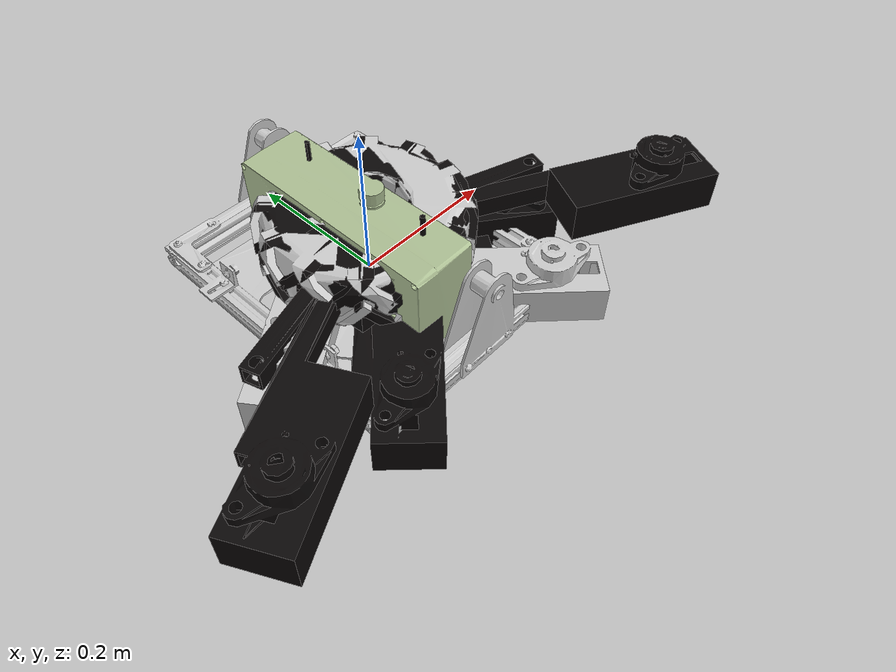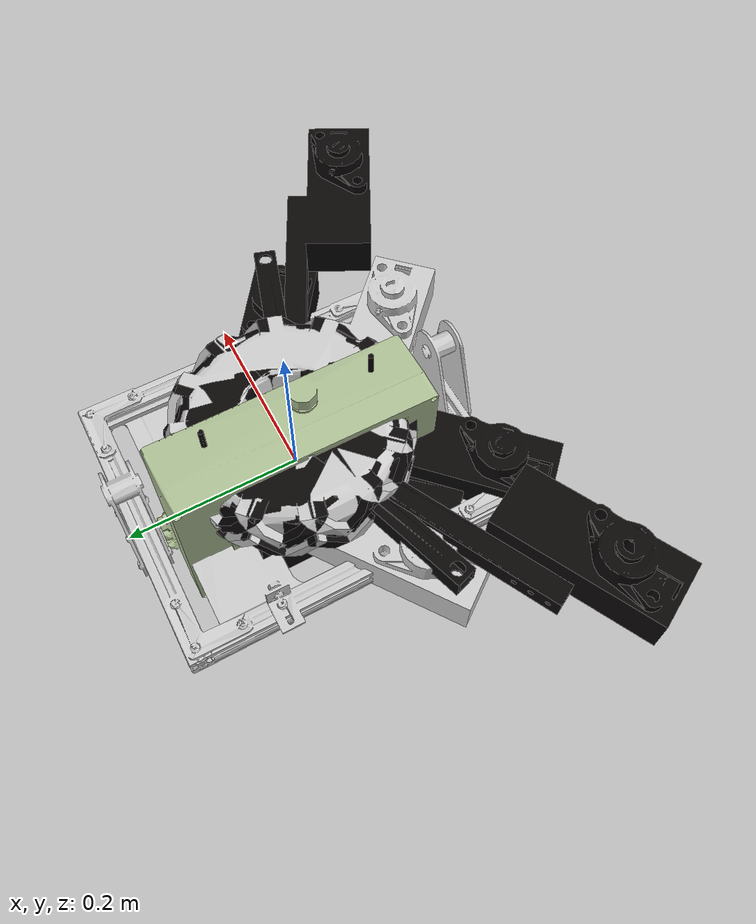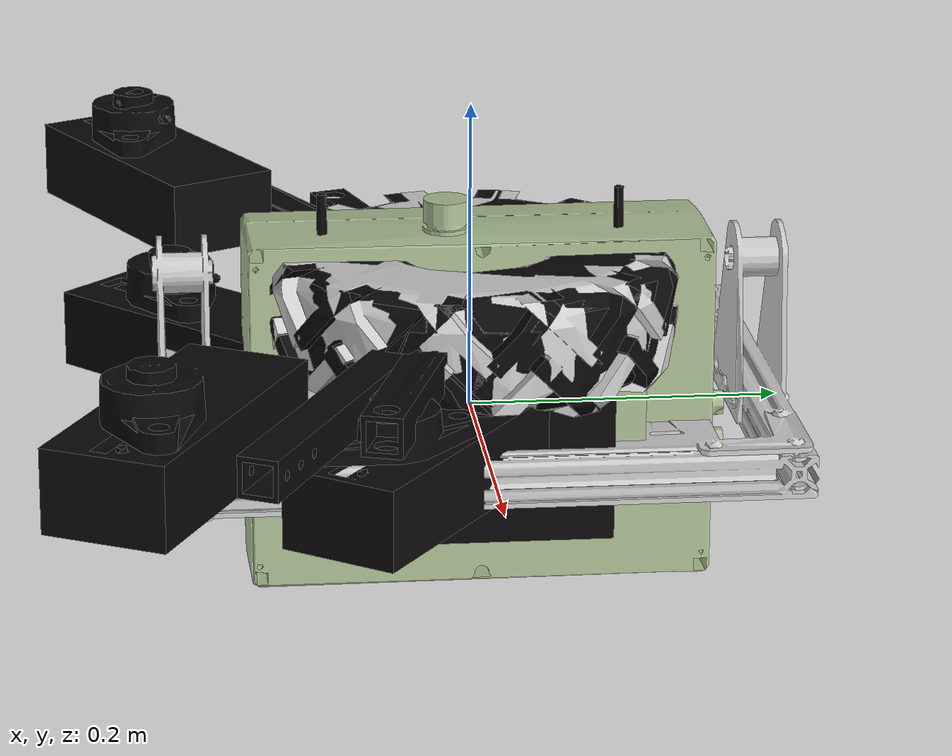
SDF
<sdf version="1.9">
<model name="boden_description" canonical_link="main_plate_link">
  <joint name="Zed2i_link_joint" type="fixed">
    <pose relative_to="electronics_link">-0.08420 0.00894 0.08299 1.57080 0.00000 -1.57080</pose>
    <parent>electronics_link</parent>
    <child>Zed2i_link</child>
    <axis/>
  </joint>
  <joint name="base_link_joint" type="fixed">
    <pose relative_to="main_plate_link">0.00000 0.00000 -0.23899 0.00000 0.00000 0.00000</pose>
    <parent>main_plate_link</parent>
    <child>base_link</child>
    <axis/>
  </joint>
  <joint name="battery_link_joint" type="fixed">
    <pose relative_to="main_plate_link">0.05208 0.00000 0.05627 0.00000 0.00000 0.00000</pose>
    <parent>main_plate_link</parent>
    <child>battery_link</child>
    <axis/>
  </joint>
  <joint name="electronics_link_joint" type="fixed">
    <pose relative_to="main_plate_link">-0.08592 -0.00513 0.10698 0.00000 0.00000 0.00000</pose>
    <parent>main_plate_link</parent>
    <child>electronics_link</child>
    <axis/>
  </joint>
  <joint name="left_wheel_1_link_joint" type="continuous">
    <pose relative_to="suspension_left_main_link">-0.29512 -0.20932 0.09071 0.00000 -0.00000 2.05076</pose>
    <parent>suspension_left_main_link</parent>
    <child>left_wheel_1_link</child>
    <axis>
      <limit>
        <lower>0.00000</lower>
        <upper>0.00000</upper>
        <effort>1000.00000</effort>
        <velocity>10.00000</velocity>
      </limit>
      <xyz>0.00000 0.00000 1.00000</xyz>
    </axis>
  </joint>
  <joint name="left_wheel_2_link_joint" type="continuous">
    <pose relative_to="suspension_left_sub_link">-0.12032 -0.18908 0.02638 0.00000 0.00000 2.34661</pose>
    <parent>suspension_left_sub_link</parent>
    <child>left_wheel_2_link</child>
    <axis>
      <limit>
        <lower>0.00000</lower>
        <upper>0.00000</upper>
        <effort>1000.00000</effort>
        <velocity>10.00000</velocity>
      </limit>
      <xyz>0.00000 0.00000 1.00000</xyz>
    </axis>
  </joint>
  <joint name="left_wheel_3_link_joint" type="continuous">
    <pose relative_to="suspension_left_sub_link">0.17866 -0.06537 0.02638 0.00000 0.00000 0.26966</pose>
    <parent>suspension_left_sub_link</parent>
    <child>left_wheel_3_link</child>
    <axis>
      <limit>
        <lower>0.00000</lower>
        <upper>0.00000</upper>
        <effort>1000.00000</effort>
        <velocity>10.00000</velocity>
      </limit>
      <xyz>0.00000 0.00000 1.00000</xyz>
    </axis>
  </joint>
  <joint name="right_wheel_1_link_joint" type="continuous">
    <pose relative_to="suspension_right_sub_link">0.12032 -0.18908 0.02638 -0.00000 0.00000 -2.34661</pose>
    <parent>suspension_right_sub_link</parent>
    <child>right_wheel_1_link</child>
    <axis>
      <limit>
        <lower>0.00000</lower>
        <upper>0.00000</upper>
        <effort>1000.00000</effort>
        <velocity>10.00000</velocity>
      </limit>
      <xyz>0.00000 0.00000 1.00000</xyz>
    </axis>
  </joint>
  <joint name="right_wheel_2_link_joint" type="continuous">
    <pose relative_to="suspension_right_sub_link">-0.17866 -0.06537 0.02638 0.00000 -0.00000 2.19125</pose>
    <parent>suspension_right_sub_link</parent>
    <child>right_wheel_2_link</child>
    <axis>
      <limit>
        <lower>0.00000</lower>
        <upper>0.00000</upper>
        <effort>1000.00000</effort>
        <velocity>10.00000</velocity>
      </limit>
      <xyz>0.00000 0.00000 1.00000</xyz>
    </axis>
  </joint>
  <joint name="right_wheel_3_joint" type="continuous">
    <pose relative_to="suspension_right_main_link">0.29512 -0.20932 0.09071 -0.00000 0.00000 -2.05076</pose>
    <parent>suspension_right_main_link</parent>
    <child>right_wheel_3_link</child>
    <axis>
      <limit>
        <lower>0.00000</lower>
        <upper>0.00000</upper>
        <effort>1000.00000</effort>
        <velocity>10.00000</velocity>
      </limit>
      <xyz>0.00000 0.00000 1.00000</xyz>
    </axis>
  </joint>
  <joint name="sensor_package_link_joint" type="fixed">
    <pose relative_to="main_plate_link">-0.07970 -0.00236 -0.02071 -3.14159 0.00000 0.00000</pose>
    <parent>main_plate_link</parent>
    <child>sensor_package_link</child>
    <axis/>
  </joint>
  <joint name="suspension_left_main_link_joint" type="revolute">
    <mimic multiplier="-1.00000" offset="0.00000" joint="suspension_right_main_link_joint"/>
    <pose relative_to="main_plate_link">0.00500 -0.16509 0.09549 1.57080 0.00000 0.00000</pose>
    <parent>main_plate_link</parent>
    <child>suspension_left_main_link</child>
    <axis>
      <limit>
        <lower>-0.50000</lower>
        <upper>0.50000</upper>
        <effort>1.50000</effort>
        <velocity>0.01500</velocity>
      </limit>
      <xyz>0.00000 0.00000 1.00000</xyz>
    </axis>
  </joint>
  <joint name="suspension_left_sub_link_joint" type="revolute">
    <pose relative_to="suspension_left_main_link">0.22047 -0.07218 0.06434 -0.00000 0.00000 -0.26966</pose>
    <parent>suspension_left_main_link</parent>
    <child>suspension_left_sub_link</child>
    <axis>
      <limit>
        <lower>-0.50000</lower>
        <upper>0.50000</upper>
        <effort>5.00000</effort>
        <velocity>0.01500</velocity>
      </limit>
      <xyz>0.00000 0.00000 1.00000</xyz>
    </axis>
  </joint>
  <joint name="suspension_right_main_link_joint" type="revolute">
    <pose relative_to="main_plate_link">0.00509 0.16510 0.09582 1.57080 -0.00000 3.14159</pose>
    <parent>main_plate_link</parent>
    <child>suspension_right_main_link</child>
    <axis>
      <limit>
        <lower>-0.50000</lower>
        <upper>0.50000</upper>
        <effort>1.50000</effort>
        <velocity>0.01500</velocity>
      </limit>
      <xyz>0.00000 0.00000 1.00000</xyz>
    </axis>
  </joint>
  <joint name="suspension_right_sub_link_joint" type="revolute">
    <pose relative_to="suspension_right_main_link">-0.22047 -0.07218 0.06434 -0.00000 0.00000 0.26966</pose>
    <parent>suspension_right_main_link</parent>
    <child>suspension_right_sub_link</child>
    <axis>
      <limit>
        <lower>-0.50000</lower>
        <upper>0.50000</upper>
        <effort>5.00000</effort>
        <velocity>0.01500</velocity>
      </limit>
      <xyz>0.00000 0.00000 1.00000</xyz>
    </axis>
  </joint>
  <link name="Zed2i_link">
    <sensor name="zed2i_camera" type="camera">
      <pose relative_to="Zed2i_link">0.00000 0.00000 0.00000 0.00000 -0.00000 -0.00000</pose>
      <always_on>1</always_on>
      <visualize>0</visualize>
      <enable_metrics>0</enable_metrics>
      <camera name="zed2i_camera">
        <pose relative_to="Zed2i_link">0.00000 0.00000 0.00000 0.00000 -0.00000 -0.00000</pose>
        <horizontal_fov>1.57080</horizontal_fov>
        <image>
          <width>662</width>
          <height>376</height>
        </image>
      </camera>
    </sensor>
    <sensor name="gps" type="GPS">
      <always_on>1</always_on>
      <visualize>0</visualize>
      <enable_metrics>0</enable_metrics>
    </sensor>
    <inertial>
      <inertia>
        <ixx>0.00048</ixx>
        <ixy>0.00000</ixy>
        <ixz>0.00000</ixz>
        <iyy>0.00004</iyy>
        <iyz>0.00000</iyz>
        <izz>0.00050</izz>
      </inertia>
      <pose relative_to="Zed2i_link">0.00378 0.00106 -0.00564 0.00000 0.00000 0.00000</pose>
      <mass>0.20000</mass>
    </inertial>
    <visual name="Zed2i_visual">
      <material>
        <diffuse>0.80000 0.80000 0.80000 1.00000</diffuse>
        <specular>0.00000 0.00000 0.00000 0.00000</specular>
        <emissive>0.00000 0.00000 0.00000 1.00000</emissive>
      </material>
      <pose relative_to="Zed2i_link">0.00000 0.00000 0.00000 3.14159 1.57079 3.14159</pose>
      <geometry>
        <mesh>
          <uri>../boden_description/meshes/dae/Zed2i.dae</uri>
          <scale>1.00000 1.00000 1.00000</scale>
        </mesh>
      </geometry>
    </visual>
  </link>
  <link name="base_link">
    <inertial>
      <inertia>
        <ixx>0.00001</ixx>
        <ixy>0.00000</ixy>
        <ixz>0.00000</ixz>
        <iyy>0.00001</iyy>
        <iyz>0.00000</iyz>
        <izz>0.00001</izz>
      </inertia>
      <pose relative_to="base_link">0.00000 0.00000 0.00000 0.00000 0.00000 0.00000</pose>
      <mass>0.00001</mass>
    </inertial>
  </link>
  <link name="battery_link">
    <inertial>
      <inertia>
        <ixx>0.04617</ixx>
        <ixy>0.00000</ixy>
        <ixz>0.00003</ixz>
        <iyy>0.04395</iyy>
        <iyz>0.00004</iyz>
        <izz>0.03884</izz>
      </inertia>
      <pose relative_to="battery_link">0.00000 0.00000 0.00144 0.00000 0.00000 0.00000</pose>
      <mass>8.00000</mass>
    </inertial>
    <visual name="battery_visual">
      <material>
        <diffuse>0.03922 0.02745 0.02745 1.00000</diffuse>
        <specular>0.00000 0.00000 0.00000 0.00000</specular>
        <emissive>0.00000 0.00000 0.00000 1.00000</emissive>
      </material>
      <pose relative_to="battery_link">0.00000 0.00000 0.00000 1.57080 0.00000 0.00000</pose>
      <geometry>
        <mesh>
          <uri>../boden_description/meshes/dae/battery.dae</uri>
          <scale>1.00000 1.00000 1.00000</scale>
        </mesh>
      </geometry>
    </visual>
  </link>
  <link name="electronics_link">
    <inertial>
      <inertia>
        <ixx>0.00623</ixx>
        <ixy>0.00010</ixy>
        <ixz>0.00038</ixz>
        <iyy>0.00308</iyy>
        <iyz>-0.00011</iyz>
        <izz>0.00450</izz>
      </inertia>
      <pose relative_to="electronics_link">-0.01192 0.00225 0.00595 0.00000 0.00000 0.00000</pose>
      <mass>0.50000</mass>
    </inertial>
    <visual name="electronics_visual">
      <material>
        <diffuse>0.67843 0.74902 0.58039 1.00000</diffuse>
        <specular>0.00000 0.00000 0.00000 0.00000</specular>
        <emissive>0.00000 0.00000 0.00000 1.00000</emissive>
      </material>
      <pose relative_to="electronics_link">0.00000 0.00000 0.00000 1.57080 0.00000 0.00000</pose>
      <geometry>
        <mesh>
          <uri>../boden_description/meshes/dae/electronics.dae</uri>
          <scale>1.00000 1.00000 1.00000</scale>
        </mesh>
      </geometry>
    </visual>
  </link>
  <link name="left_wheel_1_link">
    <collision name="left_wheel_1_collision">
      <pose relative_to="left_wheel_1_link">-0.00006 -0.00002 0.06622 0.00000 0.00000 0.00000</pose>
      <geometry>
        <cylinder>
          <radius>0.13329</radius>
          <length>0.10744</length>
        </cylinder>
      </geometry>
      <surface>
        <contact/>
      </surface>
    </collision>
    <inertial>
      <inertia>
        <ixx>0.00162</ixx>
        <ixy>0.00000</ixy>
        <ixz>0.00000</ixz>
        <iyy>0.00267</iyy>
        <iyz>0.00000</iyz>
        <izz>0.00162</izz>
      </inertia>
      <pose relative_to="left_wheel_1_link">-0.00006 -0.00002 0.06622 0.00000 0.00000 0.00000</pose>
      <mass>0.30000</mass>
    </inertial>
    <visual name="left_wheel_1_visual">
      <material>
        <diffuse>0.80000 0.80000 0.80000 1.00000</diffuse>
        <specular>0.00000 0.00000 0.00000 0.00000</specular>
        <emissive>0.00000 0.00000 0.00000 1.00000</emissive>
      </material>
      <pose relative_to="left_wheel_1_link">0.00000 -0.00000 -0.00000 0.00000 0.00000 0.00000</pose>
      <geometry>
        <mesh>
          <uri>../boden_description/meshes/dae/wheel-left.dae</uri>
          <scale>1.00000 1.00000 1.00000</scale>
        </mesh>
      </geometry>
    </visual>
  </link>
  <link name="left_wheel_2_link">
    <collision name="left_wheel_2_collision">
      <pose relative_to="left_wheel_2_link">-0.00006 -0.00002 0.06622 0.00000 0.00000 0.00000</pose>
      <geometry>
        <cylinder>
          <radius>0.13329</radius>
          <length>0.10744</length>
        </cylinder>
      </geometry>
      <surface>
        <contact/>
      </surface>
    </collision>
    <inertial>
      <inertia>
        <ixx>0.00162</ixx>
        <ixy>0.00000</ixy>
        <ixz>0.00000</ixz>
        <iyy>0.00267</iyy>
        <iyz>0.00000</iyz>
        <izz>0.00162</izz>
      </inertia>
      <pose relative_to="left_wheel_2_link">-0.00006 -0.00002 0.06622 0.00000 0.00000 0.00000</pose>
      <mass>0.30000</mass>
    </inertial>
    <visual name="left_wheel_2_visual">
      <material>
        <diffuse>0.03922 0.02745 0.02745 1.00000</diffuse>
        <specular>0.00000 0.00000 0.00000 0.00000</specular>
        <emissive>0.00000 0.00000 0.00000 1.00000</emissive>
      </material>
      <pose relative_to="left_wheel_2_link">0.00000 -0.00000 -0.00000 0.00000 0.00000 0.00000</pose>
      <geometry>
        <mesh>
          <uri>../boden_description/meshes/dae/wheel-left.dae</uri>
          <scale>1.00000 1.00000 1.00000</scale>
        </mesh>
      </geometry>
    </visual>
  </link>
  <link name="left_wheel_3_link">
    <collision name="left_wheel_3_collision">
      <pose relative_to="left_wheel_3_link">0.00004 0.00005 0.06622 -3.14159 0.00000 0.00000</pose>
      <geometry>
        <cylinder>
          <radius>0.13329</radius>
          <length>0.10744</length>
        </cylinder>
      </geometry>
      <surface>
        <contact/>
      </surface>
    </collision>
    <inertial>
      <inertia>
        <ixx>0.00162</ixx>
        <ixy>0.00000</ixy>
        <ixz>0.00000</ixz>
        <iyy>0.00267</iyy>
        <iyz>0.00000</iyz>
        <izz>0.00162</izz>
      </inertia>
      <pose relative_to="left_wheel_3_link">0.00004 0.00005 0.06622 0.00000 0.00000 0.00000</pose>
      <mass>0.30000</mass>
    </inertial>
    <visual name="left_wheel_3_visual">
      <material>
        <diffuse>0.03922 0.02745 0.02745 1.00000</diffuse>
        <specular>0.00000 0.00000 0.00000 0.00000</specular>
        <emissive>0.00000 0.00000 0.00000 1.00000</emissive>
      </material>
      <pose relative_to="left_wheel_3_link">0.00000 0.00000 -0.00000 0.00000 0.00000 0.00000</pose>
      <geometry>
        <mesh>
          <uri>../boden_description/meshes/dae/wheel-left.dae</uri>
          <scale>1.00000 1.00000 1.00000</scale>
        </mesh>
      </geometry>
    </visual>
  </link>
  <link name="main_plate_link">
    <inertial>
      <inertia>
        <ixx>0.00100</ixx>
        <ixy>0.00000</ixy>
        <ixz>0.00000</ixz>
        <iyy>0.00100</iyy>
        <iyz>0.00000</iyz>
        <izz>0.00100</izz>
      </inertia>
      <pose relative_to="main_plate_link">-0.03928 0.00000 -0.00904 0.00000 0.00000 0.00000</pose>
      <mass>2.00000</mass>
    </inertial>
    <visual name="main_plate_visual">
      <material>
        <diffuse>0.80000 0.80000 0.80000 1.00000</diffuse>
        <specular>0.00000 0.00000 0.00000 0.00000</specular>
        <emissive>0.00000 0.00000 0.00000 1.00000</emissive>
      </material>
      <pose relative_to="main_plate_link">0.00000 0.00000 0.00674 1.57080 0.00000 0.00000</pose>
      <geometry>
        <mesh>
          <uri>../boden_description/meshes/dae/main-plate.dae</uri>
          <scale>1.00000 1.00000 1.00000</scale>
        </mesh>
      </geometry>
    </visual>
  </link>
  <link name="right_wheel_1_link">
    <collision name="right_wheel_1_collision">
      <pose relative_to="right_wheel_1_link">0.00006 -0.00002 0.06622 -3.14159 -0.00000 0.00000</pose>
      <geometry>
        <cylinder>
          <radius>0.13329</radius>
          <length>0.10744</length>
        </cylinder>
      </geometry>
      <surface>
        <contact/>
      </surface>
    </collision>
    <inertial>
      <inertia>
        <ixx>0.00162</ixx>
        <ixy>0.00000</ixy>
        <ixz>0.00000</ixz>
        <iyy>0.00267</iyy>
        <iyz>0.00000</iyz>
        <izz>0.00162</izz>
      </inertia>
      <pose relative_to="right_wheel_1_link">0.00006 -0.00002 0.06622 0.00000 0.00000 0.00000</pose>
      <mass>0.30000</mass>
    </inertial>
    <visual name="right_wheel_1_visual">
      <material>
        <diffuse>0.03922 0.02745 0.02745 1.00000</diffuse>
        <specular>0.00000 0.00000 0.00000 0.00000</specular>
        <emissive>0.00000 0.00000 0.00000 1.00000</emissive>
      </material>
      <pose relative_to="right_wheel_1_link">0.00000 0.00000 0.00000 -3.14159 -0.00000 0.00000</pose>
      <geometry>
        <mesh>
          <uri>../boden_description/meshes/dae/wheel-right.dae</uri>
          <scale>1.00000 1.00000 1.00000</scale>
        </mesh>
      </geometry>
    </visual>
  </link>
  <link name="right_wheel_2_link">
    <collision name="right_wheel_2_collision">
      <pose relative_to="right_wheel_2_link">0.00006 -0.00002 0.06622 3.14159 0.00000 0.00000</pose>
      <geometry>
        <cylinder>
          <radius>0.13329</radius>
          <length>0.10744</length>
        </cylinder>
      </geometry>
      <surface>
        <contact/>
      </surface>
    </collision>
    <inertial>
      <inertia>
        <ixx>0.00162</ixx>
        <ixy>0.00000</ixy>
        <ixz>0.00000</ixz>
        <iyy>0.00267</iyy>
        <iyz>0.00000</iyz>
        <izz>0.00162</izz>
      </inertia>
      <pose relative_to="right_wheel_2_link">0.00006 -0.00002 0.06622 0.00000 0.00000 0.00000</pose>
      <mass>0.30000</mass>
    </inertial>
    <visual name="right_wheel_2_visual">
      <material>
        <diffuse>0.03922 0.02745 0.02745 1.00000</diffuse>
        <specular>0.00000 0.00000 0.00000 0.00000</specular>
        <emissive>0.00000 0.00000 0.00000 1.00000</emissive>
      </material>
      <pose relative_to="right_wheel_2_link">-0.00000 -0.00000 0.00000 3.14159 0.00000 0.00000</pose>
      <geometry>
        <mesh>
          <uri>../boden_description/meshes/dae/wheel-right.dae</uri>
          <scale>1.00000 1.00000 1.00000</scale>
        </mesh>
      </geometry>
    </visual>
  </link>
  <link name="right_wheel_3_link">
    <collision name="right_wheel_3_collision">
      <pose relative_to="right_wheel_3_link">0.00001 0.00000 0.06622 -3.14159 -0.00000 0.00000</pose>
      <geometry>
        <cylinder>
          <radius>0.13335</radius>
          <length>0.10744</length>
        </cylinder>
      </geometry>
      <surface>
        <contact/>
      </surface>
    </collision>
    <inertial>
      <inertia>
        <ixx>0.00162</ixx>
        <ixy>0.00000</ixy>
        <ixz>0.00000</ixz>
        <iyy>0.00267</iyy>
        <iyz>0.00000</iyz>
        <izz>0.00162</izz>
      </inertia>
      <pose relative_to="right_wheel_3_link">0.00001 0.00000 0.06622 0.00000 0.00000 0.00000</pose>
      <mass>0.30000</mass>
    </inertial>
    <visual name="right_wheel_3_visual">
      <material>
        <diffuse>0.03922 0.02745 0.02745 1.00000</diffuse>
        <specular>0.00000 0.00000 0.00000 0.00000</specular>
        <emissive>0.00000 0.00000 0.00000 1.00000</emissive>
      </material>
      <pose relative_to="right_wheel_3_link">0.00000 0.00000 0.00000 -3.14159 -0.00000 0.00000</pose>
      <geometry>
        <mesh>
          <uri>../boden_description/meshes/dae/wheel-right.dae</uri>
          <scale>1.00000 1.00000 1.00000</scale>
        </mesh>
      </geometry>
    </visual>
  </link>
  <link name="sensor_package_link">
    <inertial>
      <inertia>
        <ixx>0.00129</ixx>
        <ixy>0.00000</ixy>
        <ixz>0.00001</ixz>
        <iyy>0.00052</iyy>
        <iyz>0.00001</iyz>
        <izz>0.00154</izz>
      </inertia>
      <pose relative_to="sensor_package_link">0.00247 0.00036 0.01919 0.00000 0.00000 0.00000</pose>
      <mass>0.30000</mass>
    </inertial>
    <visual name="sensor_package_visual">
      <material>
        <diffuse>0.67843 0.74902 0.58039 1.00000</diffuse>
        <specular>0.00000 0.00000 0.00000 0.00000</specular>
        <emissive>0.00000 0.00000 0.00000 1.00000</emissive>
      </material>
      <pose relative_to="sensor_package_link">0.00000 0.00000 0.00000 -1.57080 0.00000 0.00000</pose>
      <geometry>
        <mesh>
          <uri>../boden_description/meshes/dae/sensor-package.dae</uri>
          <scale>1.00000 1.00000 1.00000</scale>
        </mesh>
      </geometry>
    </visual>
  </link>
  <link name="suspension_left_main_link">
    <inertial>
      <inertia>
        <ixx>0.03839</ixx>
        <ixy>-0.00521</ixy>
        <ixz>-0.05264</ixz>
        <iyy>0.11630</iyy>
        <iyz>-0.00362</iyz>
        <izz>0.07964</izz>
      </inertia>
      <pose relative_to="suspension_left_main_link">-0.14394 -0.11660 0.07202 0.00000 0.00000 0.00000</pose>
      <mass>2.00000</mass>
    </inertial>
    <visual name="suspension_left_main_visual">
      <material>
        <diffuse>0.03922 0.02745 0.02745 1.00000</diffuse>
        <specular>0.00000 0.00000 0.00000 0.00000</specular>
        <emissive>0.00000 0.00000 0.00000 1.00000</emissive>
      </material>
      <pose relative_to="suspension_left_main_link">0.00000 0.00000 -0.00000 3.14159 0.00000 0.00000</pose>
      <geometry>
        <mesh>
          <uri>../boden_description/meshes/dae/suspension-left.dae</uri>
          <scale>1.00000 1.00000 1.00000</scale>
        </mesh>
      </geometry>
    </visual>
  </link>
  <link name="suspension_left_sub_link">
    <inertial>
      <inertia>
        <ixx>0.01321</ixx>
        <ixy>0.00058</ixy>
        <ixz>-0.00162</ixz>
        <iyy>0.04851</iyy>
        <iyz>-0.00201</iyz>
        <izz>0.03744</izz>
      </inertia>
      <pose relative_to="suspension_left_sub_link">0.01868 -0.09125 0.01201 0.00000 0.00000 0.00000</pose>
      <mass>2.50000</mass>
    </inertial>
    <visual name="suspension_left_sub_visual">
      <material>
        <diffuse>0.03922 0.02745 0.02745 1.00000</diffuse>
        <specular>0.00000 0.00000 0.00000 0.00000</specular>
        <emissive>0.00000 0.00000 0.00000 1.00000</emissive>
      </material>
      <pose relative_to="suspension_left_sub_link">0.00000 0.00000 0.00000 3.14159 -0.00000 -0.00000</pose>
      <geometry>
        <mesh>
          <uri>../boden_description/meshes/dae/suspension-left-sub.dae</uri>
          <scale>1.00000 1.00000 1.00000</scale>
        </mesh>
      </geometry>
    </visual>
  </link>
  <link name="suspension_right_main_link">
    <inertial>
      <inertia>
        <ixx>0.03839</ixx>
        <ixy>0.00521</ixy>
        <ixz>-0.05264</ixz>
        <iyy>0.11630</iyy>
        <iyz>0.00362</iyz>
        <izz>0.07964</izz>
      </inertia>
      <pose relative_to="suspension_right_main_link">0.14394 -0.11660 0.07202 0.00000 0.00000 0.00000</pose>
      <mass>2.00000</mass>
    </inertial>
    <visual name="suspension_right_main_visual">
      <material>
        <diffuse>0.03922 0.02745 0.02745 1.00000</diffuse>
        <specular>0.00000 0.00000 0.00000 0.00000</specular>
        <emissive>0.00000 0.00000 0.00000 1.00000</emissive>
      </material>
      <pose relative_to="suspension_right_main_link">0.00000 0.00000 0.00000 0.00000 0.00000 -0.00000</pose>
      <geometry>
        <mesh>
          <uri>../boden_description/meshes/dae/suspension-right.dae</uri>
          <scale>1.00000 1.00000 1.00000</scale>
        </mesh>
      </geometry>
    </visual>
  </link>
  <link name="suspension_right_sub_link">
    <inertial>
      <inertia>
        <ixx>0.01321</ixx>
        <ixy>-0.00058</ixy>
        <ixz>-0.00162</ixz>
        <iyy>0.04851</iyy>
        <iyz>0.00201</iyz>
        <izz>0.03744</izz>
      </inertia>
      <pose relative_to="suspension_right_sub_link">-0.01868 -0.09125 0.01201 0.00000 0.00000 0.00000</pose>
      <mass>2.50000</mass>
    </inertial>
    <visual name="suspension_right_sub_visual">
      <material>
        <diffuse>0.80000 0.80000 0.80000 1.00000</diffuse>
        <specular>0.00000 0.00000 0.00000 0.00000</specular>
        <emissive>0.00000 0.00000 0.00000 1.00000</emissive>
      </material>
      <pose relative_to="suspension_right_sub_link">-0.00000 -0.00000 0.00000 -0.00000 0.00000 0.00000</pose>
      <geometry>
        <mesh>
          <uri>../boden_description/meshes/dae/suspension-right-sub.dae</uri>
          <scale>1.00000 1.00000 1.00000</scale>
        </mesh>
      </geometry>
    </visual>
  </link>
</model>
</sdf>
